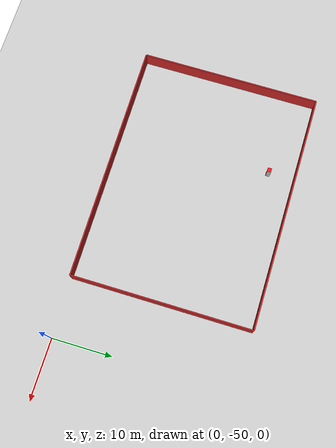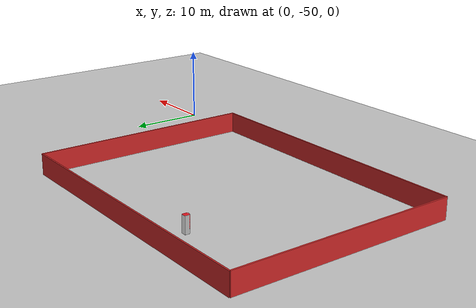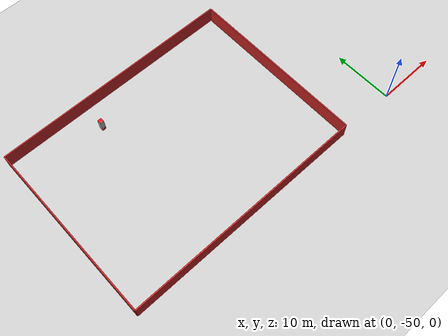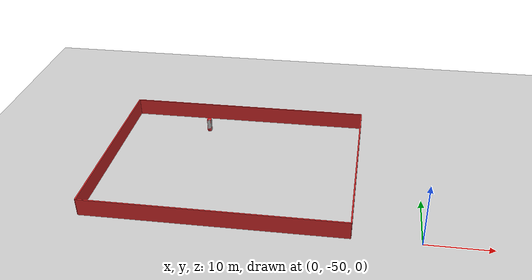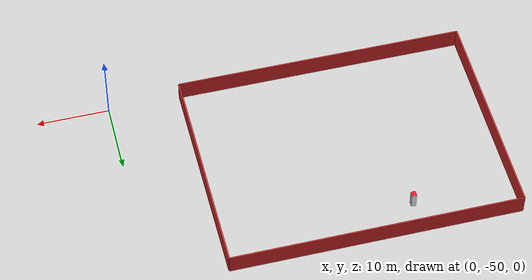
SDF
<sdf version="1.6">
 <world name="default">
  <model name="ground_plane">
   <static>1</static>
   <link name="link">
    <collision name="collision">
     <geometry><plane><normal>0 0 1</normal><size>100 100</size></plane></geometry>
     <surface>
      <contact><collide_bitmask>65535</collide_bitmask></contact>
      <friction><ode><mu>100</mu><mu2>50</mu2></ode></friction>
     </surface>
    </collision>
    <visual name="visual">
     <cast_shadows>0</cast_shadows>
     <geometry><plane><normal>0 0 1</normal><size>100 100</size></plane></geometry>
     <material>
      <script><uri>file://media/materials/scripts/gazebo.material</uri><name>Gazebo/Grey</name></script>
     </material>
    </visual>
   </link>
  </model>
  <model name="redbrick_wall">
   <static>1</static>
   <link name="link_1">
    <pose>20 0 1.4 0 -0 0</pose>
    <inertial>
     <inertia><ixx>nan</ixx><ixy>0</ixy><ixz>0</ixz><iyy>nan</iyy><iyz>0</iyz><izz>nan</izz></inertia>
     <mass>0</mass>
    </inertial>
    <visual name="visual_1">
     <cast_shadows>0</cast_shadows>
     <geometry><box><size>40 0.2 2.8</size></box></geometry>
     <material>
      <script>
       <uri>model://env_wall/redbrick_wall/materials/scripts</uri>
       <uri>model://env_wall/redbrick_wall/materials/textures</uri>
       <name>vrc/redbrick_wall</name>
      </script>
      <ambient>1 0.764706 0.305882 1</ambient>
      <shader type="pixel"/>
      <diffuse>0.7 0.7 0.7 1</diffuse>
      <specular>0.01 0.01 0.01 1</specular>
      <emissive>0 0 0 1</emissive>
     </material>
    </visual>
    <collision name="collision_1">
     <geometry><box><size>40 0.2 2.8</size></box></geometry>
     <surface>
      <friction>
       <ode><mu>1</mu><mu2>1</mu2><fdir1>0 0 0</fdir1><slip1>0</slip1><slip2>0</slip2></ode>
       <torsional>
        <coefficient>1</coefficient>
        <patch_radius>0</patch_radius>
        <surface_radius>0</surface_radius>
        <use_patch_radius>1</use_patch_radius>
        <ode><slip>0</slip></ode>
       </torsional>
      </friction>
      <bounce><restitution_coefficient>0</restitution_coefficient><threshold>1e+06</threshold></bounce>
      <contact>
       <collide_without_contact>0</collide_without_contact>
       <collide_without_contact_bitmask>1</collide_without_contact_bitmask>
       <collide_bitmask>1</collide_bitmask>
       <ode>
        <soft_cfm>0</soft_cfm>
        <soft_erp>0.2</soft_erp>
        <kp>1e+13</kp>
        <kd>1</kd>
        <max_vel>0.01</max_vel>
        <min_depth>0</min_depth>
       </ode>
       <bullet>
        <split_impulse>1</split_impulse>
        <split_impulse_penetration_threshold>-0.01</split_impulse_penetration_threshold>
        <soft_cfm>0</soft_cfm>
        <soft_erp>0.2</soft_erp>
        <kp>1e+13</kp>
        <kd>1</kd>
       </bullet>
      </contact>
     </surface>
    </collision>
   </link>
   <link name="link_2">
    <pose>20 30 1.4 0 -0 0</pose>
    <inertial>
     <inertia><ixx>nan</ixx><ixy>0</ixy><ixz>0</ixz><iyy>nan</iyy><iyz>0</iyz><izz>nan</izz></inertia>
     <mass>0</mass>
    </inertial>
    <visual name="visual_2">
     <cast_shadows>0</cast_shadows>
     <geometry><box><size>40 0.2 2.8</size></box></geometry>
     <material>
      <script>
       <uri>model://env_wall/redbrick_wall/materials/scripts</uri>
       <uri>model://env_wall/redbrick_wall/materials/textures</uri>
       <name>vrc/redbrick_wall</name>
      </script>
      <ambient>1 0.764706 0.305882 1</ambient>
      <shader type="pixel"/>
      <diffuse>0.7 0.7 0.7 1</diffuse>
      <specular>0.01 0.01 0.01 1</specular>
      <emissive>0 0 0 1</emissive>
     </material>
    </visual>
    <collision name="collision_2">
     <geometry><box><size>40 0.2 2.8</size></box></geometry>
     <surface>
      <friction>
       <ode><mu>1</mu><mu2>1</mu2><fdir1>0 0 0</fdir1><slip1>0</slip1><slip2>0</slip2></ode>
       <torsional>
        <coefficient>1</coefficient>
        <patch_radius>0</patch_radius>
        <surface_radius>0</surface_radius>
        <use_patch_radius>1</use_patch_radius>
        <ode><slip>0</slip></ode>
       </torsional>
      </friction>
      <bounce><restitution_coefficient>0</restitution_coefficient><threshold>1e+06</threshold></bounce>
      <contact>
       <collide_without_contact>0</collide_without_contact>
       <collide_without_contact_bitmask>1</collide_without_contact_bitmask>
       <collide_bitmask>1</collide_bitmask>
       <ode>
        <soft_cfm>0</soft_cfm>
        <soft_erp>0.2</soft_erp>
        <kp>1e+13</kp>
        <kd>1</kd>
        <max_vel>0.01</max_vel>
        <min_depth>0</min_depth>
       </ode>
       <bullet>
        <split_impulse>1</split_impulse>
        <split_impulse_penetration_threshold>-0.01</split_impulse_penetration_threshold>
        <soft_cfm>0</soft_cfm>
        <soft_erp>0.2</soft_erp>
        <kp>1e+13</kp>
        <kd>1</kd>
       </bullet>
      </contact>
     </surface>
    </collision>
   </link>
   <link name="link_3">
    <pose>0 15 1.4 0 -0 1.57</pose>
    <inertial>
     <inertia><ixx>nan</ixx><ixy>0</ixy><ixz>0</ixz><iyy>nan</iyy><iyz>0</iyz><izz>nan</izz></inertia>
     <mass>0</mass>
    </inertial>
    <visual name="visual_3">
     <cast_shadows>0</cast_shadows>
     <geometry><box><size>30 0.2 2.8</size></box></geometry>
     <material>
      <script>
       <uri>model://env_wall/redbrick_wall/materials/scripts</uri>
       <uri>model://env_wall/redbrick_wall/materials/textures</uri>
       <name>vrc/redbrick_wall</name>
      </script>
      <ambient>1 0.764706 0.305882 1</ambient>
      <shader type="pixel"/>
      <diffuse>0.7 0.7 0.7 1</diffuse>
      <specular>0.01 0.01 0.01 1</specular>
      <emissive>0 0 0 1</emissive>
     </material>
    </visual>
    <collision name="collision_3">
     <geometry><box><size>30 0.2 2.8</size></box></geometry>
     <surface>
      <friction>
       <ode><mu>1</mu><mu2>1</mu2><fdir1>0 0 0</fdir1><slip1>0</slip1><slip2>0</slip2></ode>
       <torsional>
        <coefficient>1</coefficient>
        <patch_radius>0</patch_radius>
        <surface_radius>0</surface_radius>
        <use_patch_radius>1</use_patch_radius>
        <ode><slip>0</slip></ode>
       </torsional>
      </friction>
      <bounce><restitution_coefficient>0</restitution_coefficient><threshold>1e+06</threshold></bounce>
      <contact>
       <collide_without_contact>0</collide_without_contact>
       <collide_without_contact_bitmask>1</collide_without_contact_bitmask>
       <collide_bitmask>1</collide_bitmask>
       <ode>
        <soft_cfm>0</soft_cfm>
        <soft_erp>0.2</soft_erp>
        <kp>1e+13</kp>
        <kd>1</kd>
        <max_vel>0.01</max_vel>
        <min_depth>0</min_depth>
       </ode>
       <bullet>
        <split_impulse>1</split_impulse>
        <split_impulse_penetration_threshold>-0.01</split_impulse_penetration_threshold>
        <soft_cfm>0</soft_cfm>
        <soft_erp>0.2</soft_erp>
        <kp>1e+13</kp>
        <kd>1</kd>
       </bullet>
      </contact>
     </surface>
    </collision>
   </link>
   <link name="link_4">
    <pose>40 15 1.4 0 -0 1.57</pose>
    <inertial>
     <inertia><ixx>nan</ixx><ixy>0</ixy><ixz>0</ixz><iyy>nan</iyy><iyz>0</iyz><izz>nan</izz></inertia>
     <mass>0</mass>
    </inertial>
    <visual name="visual_4">
     <cast_shadows>0</cast_shadows>
     <geometry><box><size>30 0.2 2.8</size></box></geometry>
     <material>
      <script>
       <uri>model://env_wall/redbrick_wall/materials/scripts</uri>
       <uri>model://env_wall/redbrick_wall/materials/textures</uri>
       <name>vrc/redbrick_wall</name>
      </script>
      <ambient>1 0.764706 0.305882 1</ambient>
      <shader type="pixel"/>
      <diffuse>0.7 0.7 0.7 1</diffuse>
      <specular>0.01 0.01 0.01 1</specular>
      <emissive>0 0 0 1</emissive>
     </material>
    </visual>
    <collision name="collision_4">
     <geometry><box><size>30 0.2 2.8</size></box></geometry>
     <surface>
      <friction>
       <ode><mu>1</mu><mu2>1</mu2><fdir1>0 0 0</fdir1><slip1>0</slip1><slip2>0</slip2></ode>
       <torsional>
        <coefficient>1</coefficient>
        <patch_radius>0</patch_radius>
        <surface_radius>0</surface_radius>
        <use_patch_radius>1</use_patch_radius>
        <ode><slip>0</slip></ode>
       </torsional>
      </friction>
      <bounce><restitution_coefficient>0</restitution_coefficient><threshold>1e+06</threshold></bounce>
      <contact>
       <collide_without_contact>0</collide_without_contact>
       <collide_without_contact_bitmask>1</collide_without_contact_bitmask>
       <collide_bitmask>1</collide_bitmask>
       <ode>
        <soft_cfm>0</soft_cfm>
        <soft_erp>0.2</soft_erp>
        <kp>1e+13</kp>
        <kd>1</kd>
        <max_vel>0.01</max_vel>
        <min_depth>0</min_depth>
       </ode>
       <bullet>
        <split_impulse>1</split_impulse>
        <split_impulse_penetration_threshold>-0.01</split_impulse_penetration_threshold>
        <soft_cfm>0</soft_cfm>
        <soft_erp>0.2</soft_erp>
        <kp>1e+13</kp>
        <kd>1</kd>
       </bullet>
      </contact>
     </surface>
    </collision>
   </link>
   <pose>-50 -50 0 0 -0 0</pose>
  </model>
  <model name="freezer">
   <static>1</static>
   <link name="link_0">
    <visual name="visual">
     <pose>-0.3 -0.3 0.2 0 -0 0</pose>
     <geometry><mesh><uri>model://env_machine/freezer/meshes/model.dae</uri><scale>1 1 1</scale></mesh></geometry>
    </visual>
    <collision name="collision">
     <pose>-0.3 -0.3 0.2 0 -0 0</pose>
     <geometry><mesh><uri>model://env_machine/freezer/meshes/model.dae</uri><scale>1 1 1</scale></mesh></geometry>
    </collision>
   </link>
   <pose>-36.1378 -24.4952 0 0 -0 0</pose>
  </model>
 </world>
</sdf>
